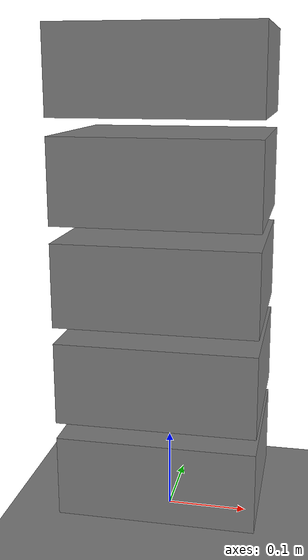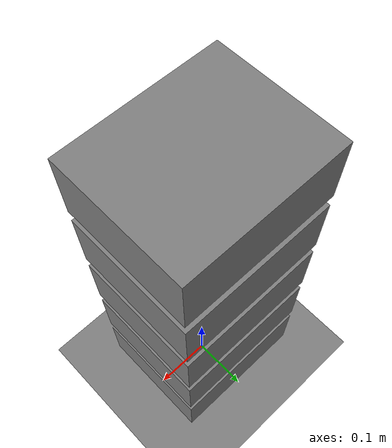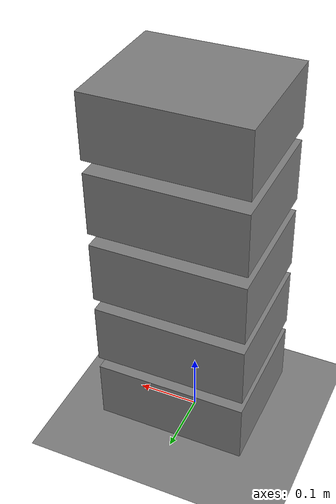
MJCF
<mujoco model="solver comparison">
  <option timestep="0.001" iterations="50" tolerance="1e-10" cone="pyramidal"/>
  <default><geom type="box" size=".12 .1 .05" mass="1" friction=".8 .01 .001"/></default>
  <worldbody>
    <geom name="floor" type="plane" size="2 2 .1" mass="0"/>
    <body name="box1" pos="0 0 .08"><freejoint/><geom/></body>
    <body name="box2" pos="0 0 .20"><freejoint/><geom/></body>
    <body name="box3" pos="0 0 .32"><freejoint/><geom/></body>
    <body name="box4" pos="0 0 .44"><freejoint/><geom/></body>
    <body name="box5" pos="0 0 .56"><freejoint/><geom/></body>
  </worldbody>
</mujoco>
